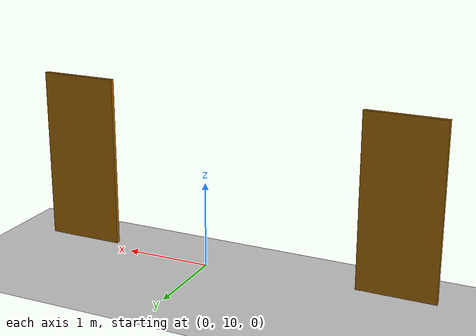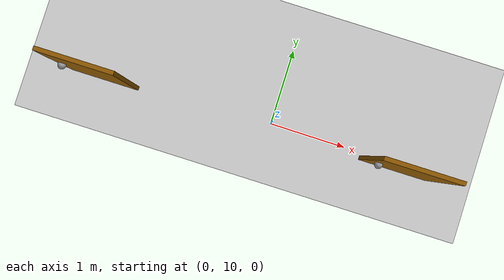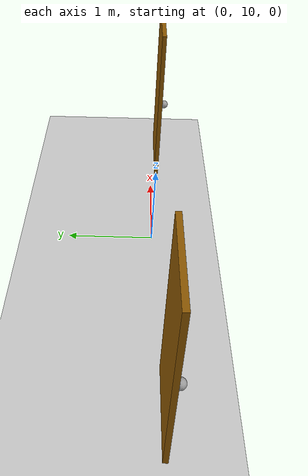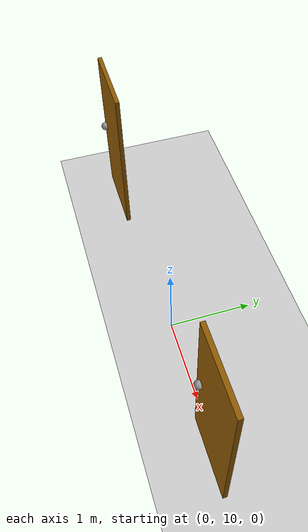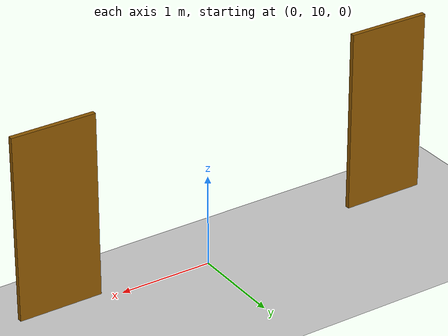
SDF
<sdf version="1.6">
 <world name="default">
  <model name="ground_plane">
   <static>1</static>
   <link name="link">
    <collision name="collision">
     <geometry><plane><normal>0 0 1</normal><size>100 100</size></plane></geometry>
     <surface>
      <contact><collide_bitmask>65535</collide_bitmask></contact>
      <friction><ode><mu>100</mu><mu2>50</mu2></ode></friction>
     </surface>
    </collision>
    <visual name="visual">
     <cast_shadows>0</cast_shadows>
     <geometry><plane><normal>0 0 1</normal><size>100 100</size></plane></geometry>
     <material>
      <script><uri>file://media/materials/scripts/gazebo.material</uri><name>Gazebo/Grey</name></script>
     </material>
    </visual>
   </link>
  </model>
  <model name="custom_door_0_clone">
   <link name="link_0">
    <inertial>
     <mass>1</mass>
     <inertia>
      <ixx>0.166667</ixx>
      <ixy>0</ixy>
      <ixz>0</ixz>
      <iyy>0.166667</iyy>
      <iyz>0</iyz>
      <izz>0.166667</izz>
     </inertia>
    </inertial>
    <pose>0.023443 -0.170637 -0.020383 0 -0 0</pose>
    <visual name="visual">
     <geometry><box><size>0.05 0.9 2</size></box></geometry>
     <material>
      <lighting>1</lighting>
      <script><uri>file://media/materials/scripts/gazebo.material</uri><name>Gazebo/Grey</name></script>
      <shader type="vertex"><normal_map>__default__</normal_map></shader>
      <ambient>0.561 0.349 0.008 1</ambient>
      <diffuse>0.561 0.349 0.008 1</diffuse>
      <specular>0.561 0.349 0.008 1</specular>
      <emissive>0 0 0 1</emissive>
     </material>
    </visual>
    <collision name="collision">
     <geometry><box><size>0.05 0.9 2</size></box></geometry>
     <surface>
      <friction>
       <ode><mu>1</mu><mu2>1</mu2><fdir1>0 0 0</fdir1><slip1>0</slip1><slip2>0</slip2></ode>
       <torsional>
        <coefficient>1</coefficient>
        <patch_radius>0</patch_radius>
        <surface_radius>0</surface_radius>
        <use_patch_radius>1</use_patch_radius>
        <ode><slip>0</slip></ode>
       </torsional>
      </friction>
      <bounce><restitution_coefficient>0</restitution_coefficient><threshold>1e+06</threshold></bounce>
      <contact>
       <collide_without_contact>0</collide_without_contact>
       <collide_without_contact_bitmask>1</collide_without_contact_bitmask>
       <collide_bitmask>1</collide_bitmask>
       <ode>
        <soft_cfm>0</soft_cfm>
        <soft_erp>0.2</soft_erp>
        <kp>1e+13</kp>
        <kd>1</kd>
        <max_vel>0.01</max_vel>
        <min_depth>0</min_depth>
       </ode>
       <bullet>
        <split_impulse>1</split_impulse>
        <split_impulse_penetration_threshold>-0.01</split_impulse_penetration_threshold>
        <soft_cfm>0</soft_cfm>
        <soft_erp>0.2</soft_erp>
        <kp>1e+13</kp>
        <kd>1</kd>
       </bullet>
      </contact>
     </surface>
    </collision>
   </link>
   <link name="link_1">
    <inertial>
     <mass>1</mass>
     <inertia><ixx>0.1</ixx><ixy>0</ixy><ixz>0</ixz><iyy>0.1</iyy><iyz>0</iyz><izz>0.1</izz></inertia>
    </inertial>
    <pose>-0.023443 0.170636 0.020383 0 -0 0</pose>
    <gravity>0</gravity>
    <visual name="visual">
     <geometry><sphere><radius>0.05</radius></sphere></geometry>
     <material>
      <lighting>1</lighting>
      <script><uri>file://media/materials/scripts/gazebo.material</uri><name>Gazebo/Grey</name></script>
      <shader type="vertex"><normal_map>__default__</normal_map></shader>
      <ambient>0.729 0.741 0.714 1</ambient>
      <diffuse>0.729 0.741 0.714 1</diffuse>
      <specular>0.729 0.741 0.714 1</specular>
      <emissive>0 0 0 1</emissive>
     </material>
    </visual>
    <collision name="collision">
     <geometry><sphere><radius>0.05</radius></sphere></geometry>
     <surface>
      <friction>
       <ode><mu>1</mu><mu2>1</mu2><fdir1>0 0 0</fdir1><slip1>0</slip1><slip2>0</slip2></ode>
       <torsional>
        <coefficient>1</coefficient>
        <patch_radius>0</patch_radius>
        <surface_radius>0</surface_radius>
        <use_patch_radius>1</use_patch_radius>
        <ode><slip>0</slip></ode>
       </torsional>
      </friction>
      <bounce><restitution_coefficient>0</restitution_coefficient><threshold>1e+06</threshold></bounce>
      <contact>
       <collide_without_contact>0</collide_without_contact>
       <collide_without_contact_bitmask>1</collide_without_contact_bitmask>
       <collide_bitmask>1</collide_bitmask>
       <ode>
        <soft_cfm>0</soft_cfm>
        <soft_erp>0.2</soft_erp>
        <kp>1e+13</kp>
        <kd>1</kd>
        <max_vel>0.01</max_vel>
        <min_depth>0</min_depth>
       </ode>
       <bullet>
        <split_impulse>1</split_impulse>
        <split_impulse_penetration_threshold>-0.01</split_impulse_penetration_threshold>
        <soft_cfm>0</soft_cfm>
        <soft_erp>0.2</soft_erp>
        <kp>1e+13</kp>
        <kd>1</kd>
       </bullet>
      </contact>
     </surface>
    </collision>
   </link>
   <joint name="link_0_JOINT_0" type="fixed">
    <parent>link_0</parent>
    <child>link_1</child>
    <physics>
     <ode><limit><cfm>0</cfm><erp>0.2</erp></limit><suspension><cfm>0</cfm><erp>0.2</erp></suspension></ode>
    </physics>
   </joint>
   <static>1</static>
   <pose>-2.39518 9.89736 1.06 0 -0 1.5708</pose>
  </model>
  <model name="custom_door_0_clone_0">
   <link name="link_0">
    <inertial>
     <mass>1</mass>
     <inertia>
      <ixx>0.166667</ixx>
      <ixy>0</ixy>
      <ixz>0</ixz>
      <iyy>0.166667</iyy>
      <iyz>0</iyz>
      <izz>0.166667</izz>
     </inertia>
    </inertial>
    <pose>0.023443 -0.170637 -0.020383 0 -0 0</pose>
    <visual name="visual">
     <geometry><box><size>0.05 0.9 2</size></box></geometry>
     <material>
      <lighting>1</lighting>
      <script><uri>file://media/materials/scripts/gazebo.material</uri><name>Gazebo/Grey</name></script>
      <shader type="vertex"><normal_map>__default__</normal_map></shader>
      <ambient>0.561 0.349 0.008 1</ambient>
      <diffuse>0.561 0.349 0.008 1</diffuse>
      <specular>0.561 0.349 0.008 1</specular>
      <emissive>0 0 0 1</emissive>
     </material>
    </visual>
    <collision name="collision">
     <geometry><box><size>0.05 0.9 2</size></box></geometry>
     <surface>
      <friction>
       <ode><mu>1</mu><mu2>1</mu2><fdir1>0 0 0</fdir1><slip1>0</slip1><slip2>0</slip2></ode>
       <torsional>
        <coefficient>1</coefficient>
        <patch_radius>0</patch_radius>
        <surface_radius>0</surface_radius>
        <use_patch_radius>1</use_patch_radius>
        <ode><slip>0</slip></ode>
       </torsional>
      </friction>
      <bounce><restitution_coefficient>0</restitution_coefficient><threshold>1e+06</threshold></bounce>
      <contact>
       <collide_without_contact>0</collide_without_contact>
       <collide_without_contact_bitmask>1</collide_without_contact_bitmask>
       <collide_bitmask>1</collide_bitmask>
       <ode>
        <soft_cfm>0</soft_cfm>
        <soft_erp>0.2</soft_erp>
        <kp>1e+13</kp>
        <kd>1</kd>
        <max_vel>0.01</max_vel>
        <min_depth>0</min_depth>
       </ode>
       <bullet>
        <split_impulse>1</split_impulse>
        <split_impulse_penetration_threshold>-0.01</split_impulse_penetration_threshold>
        <soft_cfm>0</soft_cfm>
        <soft_erp>0.2</soft_erp>
        <kp>1e+13</kp>
        <kd>1</kd>
       </bullet>
      </contact>
     </surface>
    </collision>
   </link>
   <link name="link_1">
    <inertial>
     <mass>1</mass>
     <inertia><ixx>0.1</ixx><ixy>0</ixy><ixz>0</ixz><iyy>0.1</iyy><iyz>0</iyz><izz>0.1</izz></inertia>
    </inertial>
    <pose>-0.023443 0.170636 0.020383 0 -0 0</pose>
    <gravity>0</gravity>
    <visual name="visual">
     <geometry><sphere><radius>0.05</radius></sphere></geometry>
     <material>
      <lighting>1</lighting>
      <script><uri>file://media/materials/scripts/gazebo.material</uri><name>Gazebo/Grey</name></script>
      <shader type="vertex"><normal_map>__default__</normal_map></shader>
      <ambient>0.729 0.741 0.714 1</ambient>
      <diffuse>0.729 0.741 0.714 1</diffuse>
      <specular>0.729 0.741 0.714 1</specular>
      <emissive>0 0 0 1</emissive>
     </material>
    </visual>
    <collision name="collision">
     <geometry><sphere><radius>0.05</radius></sphere></geometry>
     <surface>
      <friction>
       <ode><mu>1</mu><mu2>1</mu2><fdir1>0 0 0</fdir1><slip1>0</slip1><slip2>0</slip2></ode>
       <torsional>
        <coefficient>1</coefficient>
        <patch_radius>0</patch_radius>
        <surface_radius>0</surface_radius>
        <use_patch_radius>1</use_patch_radius>
        <ode><slip>0</slip></ode>
       </torsional>
      </friction>
      <bounce><restitution_coefficient>0</restitution_coefficient><threshold>1e+06</threshold></bounce>
      <contact>
       <collide_without_contact>0</collide_without_contact>
       <collide_without_contact_bitmask>1</collide_without_contact_bitmask>
       <collide_bitmask>1</collide_bitmask>
       <ode>
        <soft_cfm>0</soft_cfm>
        <soft_erp>0.2</soft_erp>
        <kp>1e+13</kp>
        <kd>1</kd>
        <max_vel>0.01</max_vel>
        <min_depth>0</min_depth>
       </ode>
       <bullet>
        <split_impulse>1</split_impulse>
        <split_impulse_penetration_threshold>-0.01</split_impulse_penetration_threshold>
        <soft_cfm>0</soft_cfm>
        <soft_erp>0.2</soft_erp>
        <kp>1e+13</kp>
        <kd>1</kd>
       </bullet>
      </contact>
     </surface>
    </collision>
   </link>
   <joint name="link_0_JOINT_0" type="fixed">
    <parent>link_0</parent>
    <child>link_1</child>
    <physics>
     <ode><limit><cfm>0</cfm><erp>0.2</erp></limit><suspension><cfm>0</cfm><erp>0.2</erp></suspension></ode>
    </physics>
   </joint>
   <static>1</static>
   <pose>1.49642 9.90284 1.06 0 -0 1.5708</pose>
  </model>
 </world>
</sdf>
